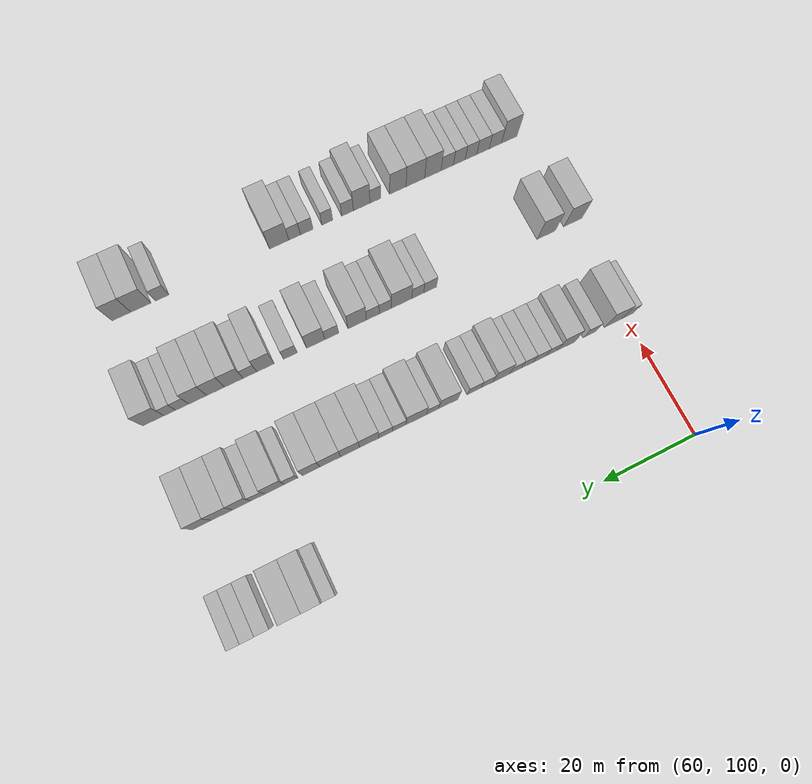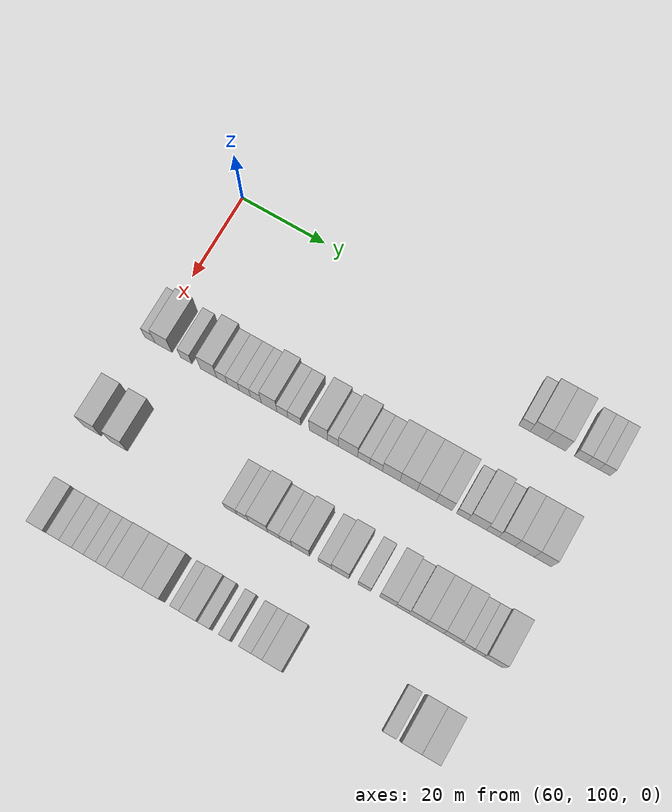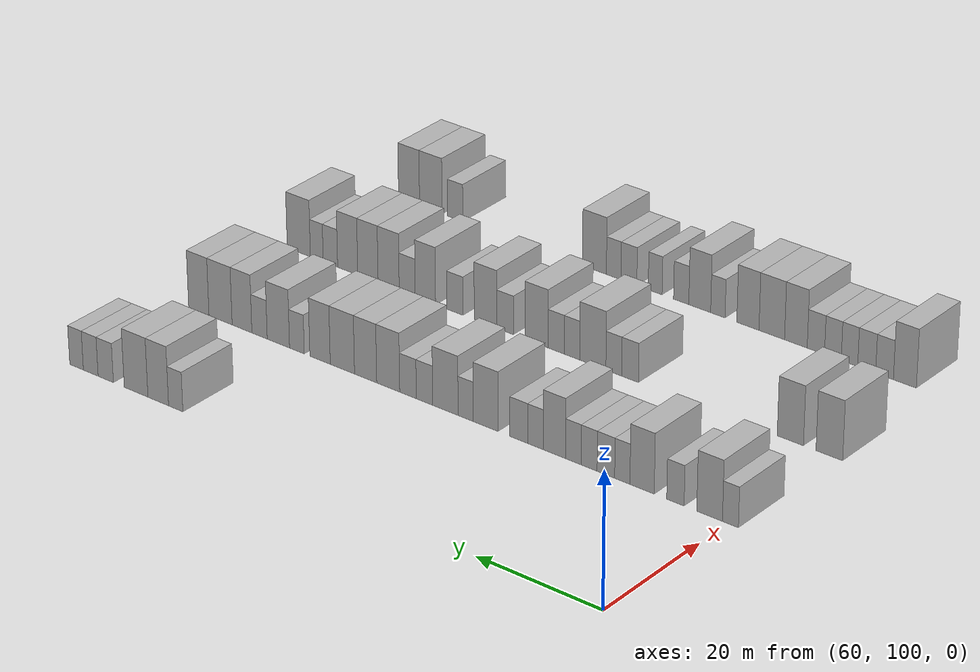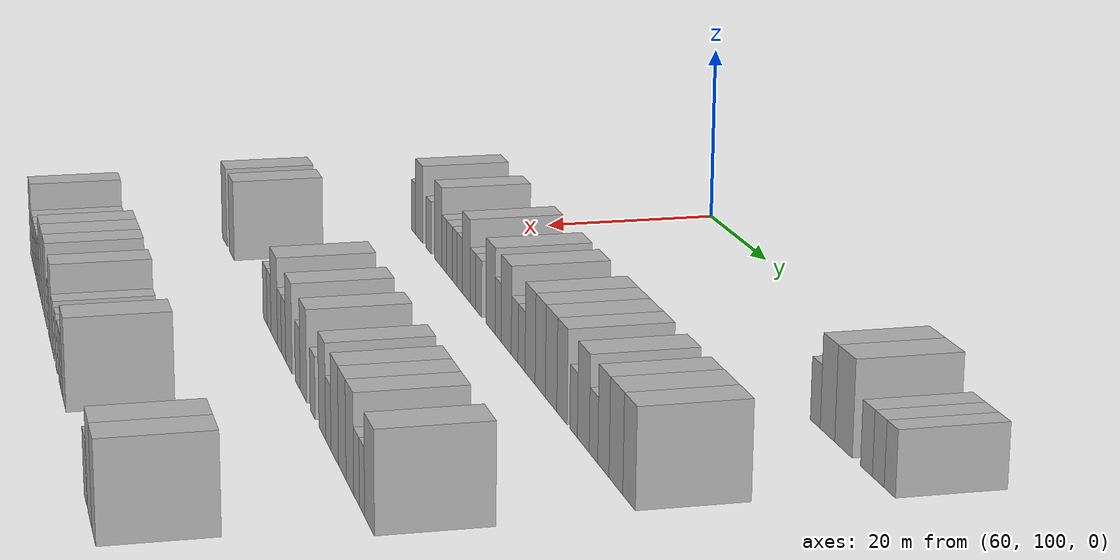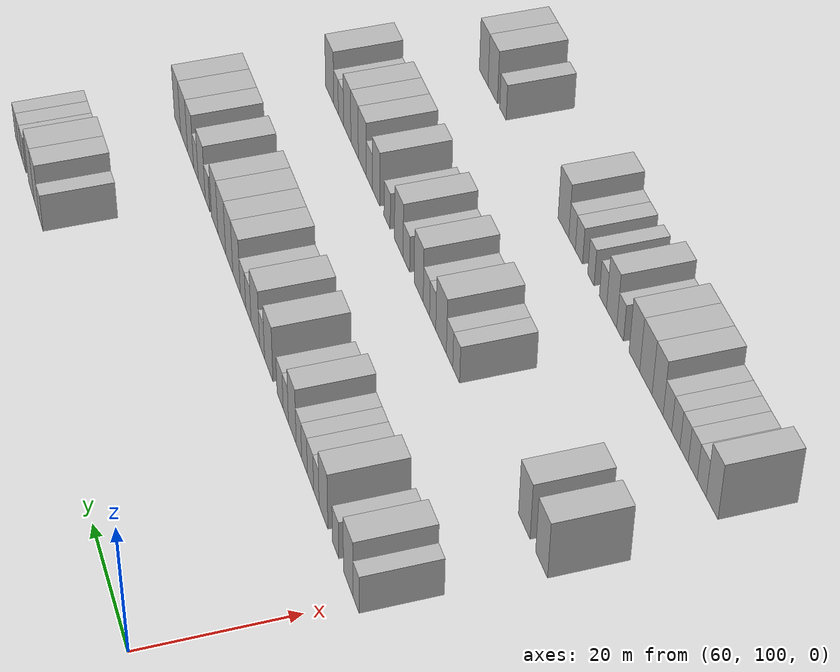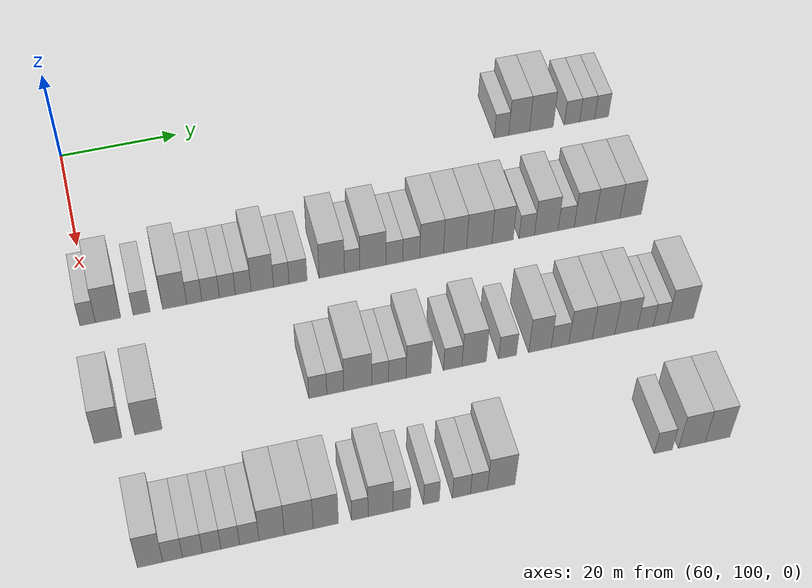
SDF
<sdf version="1.6">
 <world name="default">
  <model name="building_520">
   <static>1</static>
   <pose>69.0000 174.6282 0 0.000000 0.000000 0.000000</pose>
   <link name="link">
    <pose>0 0 3.00 0 0 0</pose>
    <collision name="collision"><geometry><box><size>10.0000 2.5870 6.0000</size></box></geometry></collision>
    <visual name="visual">
     <cast_shadows>0</cast_shadows>
     <geometry><box><size>10.0000 2.5870 6.0000</size></box></geometry>
     <material>
      <script>
       <uri>model://HANNAS_wall/materials/scripts</uri>
       <uri>model://HANNAS_wall/materials/textures</uri>
       <name>vrc/HANNAS_wall</name>
      </script>
     </material>
    </visual>
   </link>
  </model>
  <model name="building_521">
   <static>1</static>
   <pose>69.0000 177.7960 0 0.000000 0.000000 0.000000</pose>
   <link name="link">
    <pose>0 0 4.50 0 0 0</pose>
    <collision name="collision"><geometry><box><size>10.0000 3.7487 9.0000</size></box></geometry></collision>
    <visual name="visual">
     <cast_shadows>0</cast_shadows>
     <geometry><box><size>10.0000 3.7487 9.0000</size></box></geometry>
     <material>
      <script>
       <uri>model://HANNAS_wall/materials/scripts</uri>
       <uri>model://HANNAS_wall/materials/textures</uri>
       <name>vrc/HANNAS_wall</name>
      </script>
     </material>
    </visual>
   </link>
  </model>
  <model name="building_522">
   <static>1</static>
   <pose>69.0000 181.8358 0 0.000000 0.000000 0.000000</pose>
   <link name="link">
    <pose>0 0 4.50 0 0 0</pose>
    <collision name="collision"><geometry><box><size>10.0000 4.3308 9.0000</size></box></geometry></collision>
    <visual name="visual">
     <cast_shadows>0</cast_shadows>
     <geometry><box><size>10.0000 4.3308 9.0000</size></box></geometry>
     <material>
      <script>
       <uri>model://HANNAS_wall/materials/scripts</uri>
       <uri>model://HANNAS_wall/materials/textures</uri>
       <name>vrc/HANNAS_wall</name>
      </script>
     </material>
    </visual>
   </link>
  </model>
  <model name="building_523">
   <static>1</static>
   <pose>69.0000 187.4161 0 0.000000 0.000000 0.000000</pose>
   <link name="link">
    <pose>0 0 3.00 0 0 0</pose>
    <collision name="collision"><geometry><box><size>10.0000 2.8300 6.0000</size></box></geometry></collision>
    <visual name="visual">
     <cast_shadows>0</cast_shadows>
     <geometry><box><size>10.0000 2.8300 6.0000</size></box></geometry>
     <material>
      <script>
       <uri>model://HANNAS_wall/materials/scripts</uri>
       <uri>model://HANNAS_wall/materials/textures</uri>
       <name>vrc/HANNAS_wall</name>
      </script>
     </material>
    </visual>
   </link>
  </model>
  <model name="building_524">
   <static>1</static>
   <pose>69.0000 190.2018 0 0.000000 0.000000 0.000000</pose>
   <link name="link">
    <pose>0 0 3.00 0 0 0</pose>
    <collision name="collision"><geometry><box><size>10.0000 2.7413 6.0000</size></box></geometry></collision>
    <visual name="visual">
     <cast_shadows>0</cast_shadows>
     <geometry><box><size>10.0000 2.7413 6.0000</size></box></geometry>
     <material>
      <script>
       <uri>model://HANNAS_wall/materials/scripts</uri>
       <uri>model://HANNAS_wall/materials/textures</uri>
       <name>vrc/HANNAS_wall</name>
      </script>
     </material>
    </visual>
   </link>
  </model>
  <model name="building_525">
   <static>1</static>
   <pose>69.0000 192.8396 0 0.000000 0.000000 0.000000</pose>
   <link name="link">
    <pose>0 0 3.00 0 0 0</pose>
    <collision name="collision"><geometry><box><size>10.0000 2.5343 6.0000</size></box></geometry></collision>
    <visual name="visual">
     <cast_shadows>0</cast_shadows>
     <geometry><box><size>10.0000 2.5343 6.0000</size></box></geometry>
     <material>
      <script>
       <uri>model://HANNAS_wall/materials/scripts</uri>
       <uri>model://HANNAS_wall/materials/textures</uri>
       <name>vrc/HANNAS_wall</name>
      </script>
     </material>
    </visual>
   </link>
  </model>
  <model name="building_698">
   <static>1</static>
   <pose>91.0000 99.5656 0 0.000000 0.000000 0.000000</pose>
   <link name="link">
    <pose>0 0 3.00 0 0 0</pose>
    <collision name="collision"><geometry><box><size>10.0000 2.5006 6.0000</size></box></geometry></collision>
    <visual name="visual">
     <cast_shadows>0</cast_shadows>
     <geometry><box><size>10.0000 2.5006 6.0000</size></box></geometry>
     <material>
      <script>
       <uri>model://HANNAS_wall/materials/scripts</uri>
       <uri>model://HANNAS_wall/materials/textures</uri>
       <name>vrc/HANNAS_wall</name>
      </script>
     </material>
    </visual>
   </link>
  </model>
  <model name="building_699">
   <static>1</static>
   <pose>91.0000 102.8325 0 0.000000 0.000000 0.000000</pose>
   <link name="link">
    <pose>0 0 4.50 0 0 0</pose>
    <collision name="collision"><geometry><box><size>10.0000 4.0331 9.0000</size></box></geometry></collision>
    <visual name="visual">
     <cast_shadows>0</cast_shadows>
     <geometry><box><size>10.0000 4.0331 9.0000</size></box></geometry>
     <material>
      <script>
       <uri>model://HANNAS_wall/materials/scripts</uri>
       <uri>model://HANNAS_wall/materials/textures</uri>
       <name>vrc/HANNAS_wall</name>
      </script>
     </material>
    </visual>
   </link>
  </model>
  <model name="building_700">
   <static>1</static>
   <pose>91.0000 108.2322 0 0.000000 0.000000 0.000000</pose>
   <link name="link">
    <pose>0 0 3.00 0 0 0</pose>
    <collision name="collision"><geometry><box><size>10.0000 2.7662 6.0000</size></box></geometry></collision>
    <visual name="visual">
     <cast_shadows>0</cast_shadows>
     <geometry><box><size>10.0000 2.7662 6.0000</size></box></geometry>
     <material>
      <script>
       <uri>model://HANNAS_wall/materials/scripts</uri>
       <uri>model://HANNAS_wall/materials/textures</uri>
       <name>vrc/HANNAS_wall</name>
      </script>
     </material>
    </visual>
   </link>
  </model>
  <model name="building_701">
   <static>1</static>
   <pose>91.0000 113.5698 0 0.000000 0.000000 0.000000</pose>
   <link name="link">
    <pose>0 0 4.50 0 0 0</pose>
    <collision name="collision"><geometry><box><size>10.0000 3.9090 9.0000</size></box></geometry></collision>
    <visual name="visual">
     <cast_shadows>0</cast_shadows>
     <geometry><box><size>10.0000 3.9090 9.0000</size></box></geometry>
     <material>
      <script>
       <uri>model://HANNAS_wall/materials/scripts</uri>
       <uri>model://HANNAS_wall/materials/textures</uri>
       <name>vrc/HANNAS_wall</name>
      </script>
     </material>
    </visual>
   </link>
  </model>
  <model name="building_702">
   <static>1</static>
   <pose>91.0000 116.7594 0 0.000000 0.000000 0.000000</pose>
   <link name="link">
    <pose>0 0 3.00 0 0 0</pose>
    <collision name="collision"><geometry><box><size>10.0000 2.4703 6.0000</size></box></geometry></collision>
    <visual name="visual">
     <cast_shadows>0</cast_shadows>
     <geometry><box><size>10.0000 2.4703 6.0000</size></box></geometry>
     <material>
      <script>
       <uri>model://HANNAS_wall/materials/scripts</uri>
       <uri>model://HANNAS_wall/materials/textures</uri>
       <name>vrc/HANNAS_wall</name>
      </script>
     </material>
    </visual>
   </link>
  </model>
  <model name="building_703">
   <static>1</static>
   <pose>91.0000 119.4203 0 0.000000 0.000000 0.000000</pose>
   <link name="link">
    <pose>0 0 3.00 0 0 0</pose>
    <collision name="collision"><geometry><box><size>10.0000 2.8514 6.0000</size></box></geometry></collision>
    <visual name="visual">
     <cast_shadows>0</cast_shadows>
     <geometry><box><size>10.0000 2.8514 6.0000</size></box></geometry>
     <material>
      <script>
       <uri>model://HANNAS_wall/materials/scripts</uri>
       <uri>model://HANNAS_wall/materials/textures</uri>
       <name>vrc/HANNAS_wall</name>
      </script>
     </material>
    </visual>
   </link>
  </model>
  <model name="building_704">
   <static>1</static>
   <pose>91.0000 122.1571 0 0.000000 0.000000 0.000000</pose>
   <link name="link">
    <pose>0 0 3.00 0 0 0</pose>
    <collision name="collision"><geometry><box><size>10.0000 2.6221 6.0000</size></box></geometry></collision>
    <visual name="visual">
     <cast_shadows>0</cast_shadows>
     <geometry><box><size>10.0000 2.6221 6.0000</size></box></geometry>
     <material>
      <script>
       <uri>model://HANNAS_wall/materials/scripts</uri>
       <uri>model://HANNAS_wall/materials/textures</uri>
       <name>vrc/HANNAS_wall</name>
      </script>
     </material>
    </visual>
   </link>
  </model>
  <model name="building_705">
   <static>1</static>
   <pose>91.0000 124.7547 0 0.000000 0.000000 0.000000</pose>
   <link name="link">
    <pose>0 0 3.00 0 0 0</pose>
    <collision name="collision"><geometry><box><size>10.0000 2.5730 6.0000</size></box></geometry></collision>
    <visual name="visual">
     <cast_shadows>0</cast_shadows>
     <geometry><box><size>10.0000 2.5730 6.0000</size></box></geometry>
     <material>
      <script>
       <uri>model://HANNAS_wall/materials/scripts</uri>
       <uri>model://HANNAS_wall/materials/textures</uri>
       <name>vrc/HANNAS_wall</name>
      </script>
     </material>
    </visual>
   </link>
  </model>
  <model name="building_706">
   <static>1</static>
   <pose>91.0000 127.8874 0 0.000000 0.000000 0.000000</pose>
   <link name="link">
    <pose>0 0 4.50 0 0 0</pose>
    <collision name="collision"><geometry><box><size>10.0000 3.6925 9.0000</size></box></geometry></collision>
    <visual name="visual">
     <cast_shadows>0</cast_shadows>
     <geometry><box><size>10.0000 3.6925 9.0000</size></box></geometry>
     <material>
      <script>
       <uri>model://HANNAS_wall/materials/scripts</uri>
       <uri>model://HANNAS_wall/materials/textures</uri>
       <name>vrc/HANNAS_wall</name>
      </script>
     </material>
    </visual>
   </link>
  </model>
  <model name="building_707">
   <static>1</static>
   <pose>91.0000 131.0198 0 0.000000 0.000000 0.000000</pose>
   <link name="link">
    <pose>0 0 3.00 0 0 0</pose>
    <collision name="collision"><geometry><box><size>10.0000 2.5723 6.0000</size></box></geometry></collision>
    <visual name="visual">
     <cast_shadows>0</cast_shadows>
     <geometry><box><size>10.0000 2.5723 6.0000</size></box></geometry>
     <material>
      <script>
       <uri>model://HANNAS_wall/materials/scripts</uri>
       <uri>model://HANNAS_wall/materials/textures</uri>
       <name>vrc/HANNAS_wall</name>
      </script>
     </material>
    </visual>
   </link>
  </model>
  <model name="building_708">
   <static>1</static>
   <pose>91.0000 133.7971 0 0.000000 0.000000 0.000000</pose>
   <link name="link">
    <pose>0 0 3.00 0 0 0</pose>
    <collision name="collision"><geometry><box><size>10.0000 2.9824 6.0000</size></box></geometry></collision>
    <visual name="visual">
     <cast_shadows>0</cast_shadows>
     <geometry><box><size>10.0000 2.9824 6.0000</size></box></geometry>
     <material>
      <script>
       <uri>model://HANNAS_wall/materials/scripts</uri>
       <uri>model://HANNAS_wall/materials/textures</uri>
       <name>vrc/HANNAS_wall</name>
      </script>
     </material>
    </visual>
   </link>
  </model>
  <model name="building_709">
   <static>1</static>
   <pose>91.0000 139.3948 0 0.000000 0.000000 0.000000</pose>
   <link name="link">
    <pose>0 0 4.50 0 0 0</pose>
    <collision name="collision"><geometry><box><size>10.0000 4.2129 9.0000</size></box></geometry></collision>
    <visual name="visual">
     <cast_shadows>0</cast_shadows>
     <geometry><box><size>10.0000 4.2129 9.0000</size></box></geometry>
     <material>
      <script>
       <uri>model://HANNAS_wall/materials/scripts</uri>
       <uri>model://HANNAS_wall/materials/textures</uri>
       <name>vrc/HANNAS_wall</name>
      </script>
     </material>
    </visual>
   </link>
  </model>
  <model name="building_710">
   <static>1</static>
   <pose>91.0000 142.7893 0 0.000000 0.000000 0.000000</pose>
   <link name="link">
    <pose>0 0 3.00 0 0 0</pose>
    <collision name="collision"><geometry><box><size>10.0000 2.5761 6.0000</size></box></geometry></collision>
    <visual name="visual">
     <cast_shadows>0</cast_shadows>
     <geometry><box><size>10.0000 2.5761 6.0000</size></box></geometry>
     <material>
      <script>
       <uri>model://HANNAS_wall/materials/scripts</uri>
       <uri>model://HANNAS_wall/materials/textures</uri>
       <name>vrc/HANNAS_wall</name>
      </script>
     </material>
    </visual>
   </link>
  </model>
  <model name="building_711">
   <static>1</static>
   <pose>91.0000 146.2632 0 0.000000 0.000000 0.000000</pose>
   <link name="link">
    <pose>0 0 4.50 0 0 0</pose>
    <collision name="collision"><geometry><box><size>10.0000 4.3718 9.0000</size></box></geometry></collision>
    <visual name="visual">
     <cast_shadows>0</cast_shadows>
     <geometry><box><size>10.0000 4.3718 9.0000</size></box></geometry>
     <material>
      <script>
       <uri>model://HANNAS_wall/materials/scripts</uri>
       <uri>model://HANNAS_wall/materials/textures</uri>
       <name>vrc/HANNAS_wall</name>
      </script>
     </material>
    </visual>
   </link>
  </model>
  <model name="building_712">
   <static>1</static>
   <pose>91.0000 149.8657 0 0.000000 0.000000 0.000000</pose>
   <link name="link">
    <pose>0 0 3.00 0 0 0</pose>
    <collision name="collision"><geometry><box><size>10.0000 2.8332 6.0000</size></box></geometry></collision>
    <visual name="visual">
     <cast_shadows>0</cast_shadows>
     <geometry><box><size>10.0000 2.8332 6.0000</size></box></geometry>
     <material>
      <script>
       <uri>model://HANNAS_wall/materials/scripts</uri>
       <uri>model://HANNAS_wall/materials/textures</uri>
       <name>vrc/HANNAS_wall</name>
      </script>
     </material>
    </visual>
   </link>
  </model>
  <model name="building_713">
   <static>1</static>
   <pose>91.0000 152.7267 0 0.000000 0.000000 0.000000</pose>
   <link name="link">
    <pose>0 0 3.00 0 0 0</pose>
    <collision name="collision"><geometry><box><size>10.0000 2.8889 6.0000</size></box></geometry></collision>
    <visual name="visual">
     <cast_shadows>0</cast_shadows>
     <geometry><box><size>10.0000 2.8889 6.0000</size></box></geometry>
     <material>
      <script>
       <uri>model://HANNAS_wall/materials/scripts</uri>
       <uri>model://HANNAS_wall/materials/textures</uri>
       <name>vrc/HANNAS_wall</name>
      </script>
     </material>
    </visual>
   </link>
  </model>
  <model name="building_714">
   <static>1</static>
   <pose>91.0000 156.1874 0 0.000000 0.000000 0.000000</pose>
   <link name="link">
    <pose>0 0 4.50 0 0 0</pose>
    <collision name="collision"><geometry><box><size>10.0000 4.0325 9.0000</size></box></geometry></collision>
    <visual name="visual">
     <cast_shadows>0</cast_shadows>
     <geometry><box><size>10.0000 4.0325 9.0000</size></box></geometry>
     <material>
      <script>
       <uri>model://HANNAS_wall/materials/scripts</uri>
       <uri>model://HANNAS_wall/materials/textures</uri>
       <name>vrc/HANNAS_wall</name>
      </script>
     </material>
    </visual>
   </link>
  </model>
  <model name="building_715">
   <static>1</static>
   <pose>91.0000 160.1653 0 0.000000 0.000000 0.000000</pose>
   <link name="link">
    <pose>0 0 4.50 0 0 0</pose>
    <collision name="collision"><geometry><box><size>10.0000 3.9233 9.0000</size></box></geometry></collision>
    <visual name="visual">
     <cast_shadows>0</cast_shadows>
     <geometry><box><size>10.0000 3.9233 9.0000</size></box></geometry>
     <material>
      <script>
       <uri>model://HANNAS_wall/materials/scripts</uri>
       <uri>model://HANNAS_wall/materials/textures</uri>
       <name>vrc/HANNAS_wall</name>
      </script>
     </material>
    </visual>
   </link>
  </model>
  <model name="building_716">
   <static>1</static>
   <pose>91.0000 164.2886 0 0.000000 0.000000 0.000000</pose>
   <link name="link">
    <pose>0 0 4.50 0 0 0</pose>
    <collision name="collision"><geometry><box><size>10.0000 4.3233 9.0000</size></box></geometry></collision>
    <visual name="visual">
     <cast_shadows>0</cast_shadows>
     <geometry><box><size>10.0000 4.3233 9.0000</size></box></geometry>
     <material>
      <script>
       <uri>model://HANNAS_wall/materials/scripts</uri>
       <uri>model://HANNAS_wall/materials/textures</uri>
       <name>vrc/HANNAS_wall</name>
      </script>
     </material>
    </visual>
   </link>
  </model>
  <model name="building_717">
   <static>1</static>
   <pose>91.0000 168.2828 0 0.000000 0.000000 0.000000</pose>
   <link name="link">
    <pose>0 0 4.50 0 0 0</pose>
    <collision name="collision"><geometry><box><size>10.0000 3.6650 9.0000</size></box></geometry></collision>
    <visual name="visual">
     <cast_shadows>0</cast_shadows>
     <geometry><box><size>10.0000 3.6650 9.0000</size></box></geometry>
     <material>
      <script>
       <uri>model://HANNAS_wall/materials/scripts</uri>
       <uri>model://HANNAS_wall/materials/textures</uri>
       <name>vrc/HANNAS_wall</name>
      </script>
     </material>
    </visual>
   </link>
  </model>
  <model name="building_718">
   <static>1</static>
   <pose>91.0000 172.4530 0 0.000000 0.000000 0.000000</pose>
   <link name="link">
    <pose>0 0 3.00 0 0 0</pose>
    <collision name="collision"><geometry><box><size>10.0000 2.6755 6.0000</size></box></geometry></collision>
    <visual name="visual">
     <cast_shadows>0</cast_shadows>
     <geometry><box><size>10.0000 2.6755 6.0000</size></box></geometry>
     <material>
      <script>
       <uri>model://HANNAS_wall/materials/scripts</uri>
       <uri>model://HANNAS_wall/materials/textures</uri>
       <name>vrc/HANNAS_wall</name>
      </script>
     </material>
    </visual>
   </link>
  </model>
  <model name="building_719">
   <static>1</static>
   <pose>91.0000 175.8249 0 0.000000 0.000000 0.000000</pose>
   <link name="link">
    <pose>0 0 4.50 0 0 0</pose>
    <collision name="collision"><geometry><box><size>10.0000 4.0683 9.0000</size></box></geometry></collision>
    <visual name="visual">
     <cast_shadows>0</cast_shadows>
     <geometry><box><size>10.0000 4.0683 9.0000</size></box></geometry>
     <material>
      <script>
       <uri>model://HANNAS_wall/materials/scripts</uri>
       <uri>model://HANNAS_wall/materials/textures</uri>
       <name>vrc/HANNAS_wall</name>
      </script>
     </material>
    </visual>
   </link>
  </model>
  <model name="building_720">
   <static>1</static>
   <pose>91.0000 179.2675 0 0.000000 0.000000 0.000000</pose>
   <link name="link">
    <pose>0 0 3.00 0 0 0</pose>
    <collision name="collision"><geometry><box><size>10.0000 2.8168 6.0000</size></box></geometry></collision>
    <visual name="visual">
     <cast_shadows>0</cast_shadows>
     <geometry><box><size>10.0000 2.8168 6.0000</size></box></geometry>
     <material>
      <script>
       <uri>model://HANNAS_wall/materials/scripts</uri>
       <uri>model://HANNAS_wall/materials/textures</uri>
       <name>vrc/HANNAS_wall</name>
      </script>
     </material>
    </visual>
   </link>
  </model>
  <model name="building_721">
   <static>1</static>
   <pose>91.0000 182.4978 0 0.000000 0.000000 0.000000</pose>
   <link name="link">
    <pose>0 0 4.50 0 0 0</pose>
    <collision name="collision"><geometry><box><size>10.0000 3.6439 9.0000</size></box></geometry></collision>
    <visual name="visual">
     <cast_shadows>0</cast_shadows>
     <geometry><box><size>10.0000 3.6439 9.0000</size></box></geometry>
     <material>
      <script>
       <uri>model://HANNAS_wall/materials/scripts</uri>
       <uri>model://HANNAS_wall/materials/textures</uri>
       <name>vrc/HANNAS_wall</name>
      </script>
     </material>
    </visual>
   </link>
  </model>
  <model name="building_722">
   <static>1</static>
   <pose>91.0000 186.4746 0 0.000000 0.000000 0.000000</pose>
   <link name="link">
    <pose>0 0 4.50 0 0 0</pose>
    <collision name="collision"><geometry><box><size>10.0000 4.3098 9.0000</size></box></geometry></collision>
    <visual name="visual">
     <cast_shadows>0</cast_shadows>
     <geometry><box><size>10.0000 4.3098 9.0000</size></box></geometry>
     <material>
      <script>
       <uri>model://HANNAS_wall/materials/scripts</uri>
       <uri>model://HANNAS_wall/materials/textures</uri>
       <name>vrc/HANNAS_wall</name>
      </script>
     </material>
    </visual>
   </link>
  </model>
  <model name="building_723">
   <static>1</static>
   <pose>91.0000 190.5279 0 0.000000 0.000000 0.000000</pose>
   <link name="link">
    <pose>0 0 4.50 0 0 0</pose>
    <collision name="collision"><geometry><box><size>10.0000 3.7968 9.0000</size></box></geometry></collision>
    <visual name="visual">
     <cast_shadows>0</cast_shadows>
     <geometry><box><size>10.0000 3.7968 9.0000</size></box></geometry>
     <material>
      <script>
       <uri>model://HANNAS_wall/materials/scripts</uri>
       <uri>model://HANNAS_wall/materials/textures</uri>
       <name>vrc/HANNAS_wall</name>
      </script>
     </material>
    </visual>
   </link>
  </model>
  <model name="building_886">
   <static>1</static>
   <pose>113.0000 99.5436 0 0.000000 0.000000 0.000000</pose>
   <link name="link">
    <pose>0 0 4.50 0 0 0</pose>
    <collision name="collision"><geometry><box><size>10.0000 4.2140 9.0000</size></box></geometry></collision>
    <visual name="visual">
     <cast_shadows>0</cast_shadows>
     <geometry><box><size>10.0000 4.2140 9.0000</size></box></geometry>
     <material>
      <script>
       <uri>model://HANNAS_wall/materials/scripts</uri>
       <uri>model://HANNAS_wall/materials/textures</uri>
       <name>vrc/HANNAS_wall</name>
      </script>
     </material>
    </visual>
   </link>
  </model>
  <model name="building_887">
   <static>1</static>
   <pose>113.0000 105.7502 0 0.000000 0.000000 0.000000</pose>
   <link name="link">
    <pose>0 0 4.50 0 0 0</pose>
    <collision name="collision"><geometry><box><size>10.0000 4.1991 9.0000</size></box></geometry></collision>
    <visual name="visual">
     <cast_shadows>0</cast_shadows>
     <geometry><box><size>10.0000 4.1991 9.0000</size></box></geometry>
     <material>
      <script>
       <uri>model://HANNAS_wall/materials/scripts</uri>
       <uri>model://HANNAS_wall/materials/textures</uri>
       <name>vrc/HANNAS_wall</name>
      </script>
     </material>
    </visual>
   </link>
  </model>
  <model name="building_888">
   <static>1</static>
   <pose>113.0000 132.1061 0 0.000000 0.000000 0.000000</pose>
   <link name="link">
    <pose>0 0 3.00 0 0 0</pose>
    <collision name="collision"><geometry><box><size>10.0000 2.8375 6.0000</size></box></geometry></collision>
    <visual name="visual">
     <cast_shadows>0</cast_shadows>
     <geometry><box><size>10.0000 2.8375 6.0000</size></box></geometry>
     <material>
      <script>
       <uri>model://HANNAS_wall/materials/scripts</uri>
       <uri>model://HANNAS_wall/materials/textures</uri>
       <name>vrc/HANNAS_wall</name>
      </script>
     </material>
    </visual>
   </link>
  </model>
  <model name="building_889">
   <static>1</static>
   <pose>113.0000 134.8638 0 0.000000 0.000000 0.000000</pose>
   <link name="link">
    <pose>0 0 3.00 0 0 0</pose>
    <collision name="collision"><geometry><box><size>10.0000 2.6779 6.0000</size></box></geometry></collision>
    <visual name="visual">
     <cast_shadows>0</cast_shadows>
     <geometry><box><size>10.0000 2.6779 6.0000</size></box></geometry>
     <material>
      <script>
       <uri>model://HANNAS_wall/materials/scripts</uri>
       <uri>model://HANNAS_wall/materials/textures</uri>
       <name>vrc/HANNAS_wall</name>
      </script>
     </material>
    </visual>
   </link>
  </model>
  <model name="building_890">
   <static>1</static>
   <pose>113.0000 138.4421 0 0.000000 0.000000 0.000000</pose>
   <link name="link">
    <pose>0 0 4.50 0 0 0</pose>
    <collision name="collision"><geometry><box><size>10.0000 4.4789 9.0000</size></box></geometry></collision>
    <visual name="visual">
     <cast_shadows>0</cast_shadows>
     <geometry><box><size>10.0000 4.4789 9.0000</size></box></geometry>
     <material>
      <script>
       <uri>model://HANNAS_wall/materials/scripts</uri>
       <uri>model://HANNAS_wall/materials/textures</uri>
       <name>vrc/HANNAS_wall</name>
      </script>
     </material>
    </visual>
   </link>
  </model>
  <model name="building_891">
   <static>1</static>
   <pose>113.0000 142.0110 0 0.000000 0.000000 0.000000</pose>
   <link name="link">
    <pose>0 0 3.00 0 0 0</pose>
    <collision name="collision"><geometry><box><size>10.0000 2.6589 6.0000</size></box></geometry></collision>
    <visual name="visual">
     <cast_shadows>0</cast_shadows>
     <geometry><box><size>10.0000 2.6589 6.0000</size></box></geometry>
     <material>
      <script>
       <uri>model://HANNAS_wall/materials/scripts</uri>
       <uri>model://HANNAS_wall/materials/textures</uri>
       <name>vrc/HANNAS_wall</name>
      </script>
     </material>
    </visual>
   </link>
  </model>
  <model name="building_892">
   <static>1</static>
   <pose>113.0000 144.7371 0 0.000000 0.000000 0.000000</pose>
   <link name="link">
    <pose>0 0 3.00 0 0 0</pose>
    <collision name="collision"><geometry><box><size>10.0000 2.7932 6.0000</size></box></geometry></collision>
    <visual name="visual">
     <cast_shadows>0</cast_shadows>
     <geometry><box><size>10.0000 2.7932 6.0000</size></box></geometry>
     <material>
      <script>
       <uri>model://HANNAS_wall/materials/scripts</uri>
       <uri>model://HANNAS_wall/materials/textures</uri>
       <name>vrc/HANNAS_wall</name>
      </script>
     </material>
    </visual>
   </link>
  </model>
  <model name="building_893">
   <static>1</static>
   <pose>113.0000 148.1540 0 0.000000 0.000000 0.000000</pose>
   <link name="link">
    <pose>0 0 4.50 0 0 0</pose>
    <collision name="collision"><geometry><box><size>10.0000 4.0405 9.0000</size></box></geometry></collision>
    <visual name="visual">
     <cast_shadows>0</cast_shadows>
     <geometry><box><size>10.0000 4.0405 9.0000</size></box></geometry>
     <material>
      <script>
       <uri>model://HANNAS_wall/materials/scripts</uri>
       <uri>model://HANNAS_wall/materials/textures</uri>
       <name>vrc/HANNAS_wall</name>
      </script>
     </material>
    </visual>
   </link>
  </model>
  <model name="building_894">
   <static>1</static>
   <pose>113.0000 153.6663 0 0.000000 0.000000 0.000000</pose>
   <link name="link">
    <pose>0 0 3.00 0 0 0</pose>
    <collision name="collision"><geometry><box><size>10.0000 2.9842 6.0000</size></box></geometry></collision>
    <visual name="visual">
     <cast_shadows>0</cast_shadows>
     <geometry><box><size>10.0000 2.9842 6.0000</size></box></geometry>
     <material>
      <script>
       <uri>model://HANNAS_wall/materials/scripts</uri>
       <uri>model://HANNAS_wall/materials/textures</uri>
       <name>vrc/HANNAS_wall</name>
      </script>
     </material>
    </visual>
   </link>
  </model>
  <model name="building_895">
   <static>1</static>
   <pose>113.0000 157.1352 0 0.000000 0.000000 0.000000</pose>
   <link name="link">
    <pose>0 0 4.50 0 0 0</pose>
    <collision name="collision"><geometry><box><size>10.0000 3.9537 9.0000</size></box></geometry></collision>
    <visual name="visual">
     <cast_shadows>0</cast_shadows>
     <geometry><box><size>10.0000 3.9537 9.0000</size></box></geometry>
     <material>
      <script>
       <uri>model://HANNAS_wall/materials/scripts</uri>
       <uri>model://HANNAS_wall/materials/textures</uri>
       <name>vrc/HANNAS_wall</name>
      </script>
     </material>
    </visual>
   </link>
  </model>
  <model name="building_896">
   <static>1</static>
   <pose>113.0000 162.5770 0 0.000000 0.000000 0.000000</pose>
   <link name="link">
    <pose>0 0 3.00 0 0 0</pose>
    <collision name="collision"><geometry><box><size>10.0000 2.9298 6.0000</size></box></geometry></collision>
    <visual name="visual">
     <cast_shadows>0</cast_shadows>
     <geometry><box><size>10.0000 2.9298 6.0000</size></box></geometry>
     <material>
      <script>
       <uri>model://HANNAS_wall/materials/scripts</uri>
       <uri>model://HANNAS_wall/materials/textures</uri>
       <name>vrc/HANNAS_wall</name>
      </script>
     </material>
    </visual>
   </link>
  </model>
  <model name="building_897">
   <static>1</static>
   <pose>113.0000 167.8822 0 0.000000 0.000000 0.000000</pose>
   <link name="link">
    <pose>0 0 4.50 0 0 0</pose>
    <collision name="collision"><geometry><box><size>10.0000 3.6807 9.0000</size></box></geometry></collision>
    <visual name="visual">
     <cast_shadows>0</cast_shadows>
     <geometry><box><size>10.0000 3.6807 9.0000</size></box></geometry>
     <material>
      <script>
       <uri>model://HANNAS_wall/materials/scripts</uri>
       <uri>model://HANNAS_wall/materials/textures</uri>
       <name>vrc/HANNAS_wall</name>
      </script>
     </material>
    </visual>
   </link>
  </model>
  <model name="building_898">
   <static>1</static>
   <pose>113.0000 171.1848 0 0.000000 0.000000 0.000000</pose>
   <link name="link">
    <pose>0 0 3.00 0 0 0</pose>
    <collision name="collision"><geometry><box><size>10.0000 2.9245 6.0000</size></box></geometry></collision>
    <visual name="visual">
     <cast_shadows>0</cast_shadows>
     <geometry><box><size>10.0000 2.9245 6.0000</size></box></geometry>
     <material>
      <script>
       <uri>model://HANNAS_wall/materials/scripts</uri>
       <uri>model://HANNAS_wall/materials/textures</uri>
       <name>vrc/HANNAS_wall</name>
      </script>
     </material>
    </visual>
   </link>
  </model>
  <model name="building_899">
   <static>1</static>
   <pose>113.0000 174.5812 0 0.000000 0.000000 0.000000</pose>
   <link name="link">
    <pose>0 0 4.50 0 0 0</pose>
    <collision name="collision"><geometry><box><size>10.0000 3.8681 9.0000</size></box></geometry></collision>
    <visual name="visual">
     <cast_shadows>0</cast_shadows>
     <geometry><box><size>10.0000 3.8681 9.0000</size></box></geometry>
     <material>
      <script>
       <uri>model://HANNAS_wall/materials/scripts</uri>
       <uri>model://HANNAS_wall/materials/textures</uri>
       <name>vrc/HANNAS_wall</name>
      </script>
     </material>
    </visual>
   </link>
  </model>
  <model name="building_900">
   <static>1</static>
   <pose>113.0000 178.3941 0 0.000000 0.000000 0.000000</pose>
   <link name="link">
    <pose>0 0 4.50 0 0 0</pose>
    <collision name="collision"><geometry><box><size>10.0000 3.7578 9.0000</size></box></geometry></collision>
    <visual name="visual">
     <cast_shadows>0</cast_shadows>
     <geometry><box><size>10.0000 3.7578 9.0000</size></box></geometry>
     <material>
      <script>
       <uri>model://HANNAS_wall/materials/scripts</uri>
       <uri>model://HANNAS_wall/materials/textures</uri>
       <name>vrc/HANNAS_wall</name>
      </script>
     </material>
    </visual>
   </link>
  </model>
  <model name="building_901">
   <static>1</static>
   <pose>113.0000 182.1465 0 0.000000 0.000000 0.000000</pose>
   <link name="link">
    <pose>0 0 4.50 0 0 0</pose>
    <collision name="collision"><geometry><box><size>10.0000 3.7469 9.0000</size></box></geometry></collision>
    <visual name="visual">
     <cast_shadows>0</cast_shadows>
     <geometry><box><size>10.0000 3.7469 9.0000</size></box></geometry>
     <material>
      <script>
       <uri>model://HANNAS_wall/materials/scripts</uri>
       <uri>model://HANNAS_wall/materials/textures</uri>
       <name>vrc/HANNAS_wall</name>
      </script>
     </material>
    </visual>
   </link>
  </model>
  <model name="building_902">
   <static>1</static>
   <pose>113.0000 185.3722 0 0.000000 0.000000 0.000000</pose>
   <link name="link">
    <pose>0 0 3.00 0 0 0</pose>
    <collision name="collision"><geometry><box><size>10.0000 2.7045 6.0000</size></box></geometry></collision>
    <visual name="visual">
     <cast_shadows>0</cast_shadows>
     <geometry><box><size>10.0000 2.7045 6.0000</size></box></geometry>
     <material>
      <script>
       <uri>model://HANNAS_wall/materials/scripts</uri>
       <uri>model://HANNAS_wall/materials/textures</uri>
       <name>vrc/HANNAS_wall</name>
      </script>
     </material>
    </visual>
   </link>
  </model>
  <model name="building_903">
   <static>1</static>
   <pose>113.0000 187.9306 0 0.000000 0.000000 0.000000</pose>
   <link name="link">
    <pose>0 0 3.00 0 0 0</pose>
    <collision name="collision"><geometry><box><size>10.0000 2.4123 6.0000</size></box></geometry></collision>
    <visual name="visual">
     <cast_shadows>0</cast_shadows>
     <geometry><box><size>10.0000 2.4123 6.0000</size></box></geometry>
     <material>
      <script>
       <uri>model://HANNAS_wall/materials/scripts</uri>
       <uri>model://HANNAS_wall/materials/textures</uri>
       <name>vrc/HANNAS_wall</name>
      </script>
     </material>
    </visual>
   </link>
  </model>
  <model name="building_904">
   <static>1</static>
   <pose>113.0000 191.3226 0 0.000000 0.000000 0.000000</pose>
   <link name="link">
    <pose>0 0 4.50 0 0 0</pose>
    <collision name="collision"><geometry><box><size>10.0000 4.3717 9.0000</size></box></geometry></collision>
    <visual name="visual">
     <cast_shadows>0</cast_shadows>
     <geometry><box><size>10.0000 4.3717 9.0000</size></box></geometry>
     <material>
      <script>
       <uri>model://HANNAS_wall/materials/scripts</uri>
       <uri>model://HANNAS_wall/materials/textures</uri>
       <name>vrc/HANNAS_wall</name>
      </script>
     </material>
    </visual>
   </link>
  </model>
  <model name="building_1061">
   <static>1</static>
   <pose>135.0000 102.3981 0 0.000000 0.000000 0.000000</pose>
   <link name="link">
    <pose>0 0 4.50 0 0 0</pose>
    <collision name="collision"><geometry><box><size>10.0000 3.7000 9.0000</size></box></geometry></collision>
    <visual name="visual">
     <cast_shadows>0</cast_shadows>
     <geometry><box><size>10.0000 3.7000 9.0000</size></box></geometry>
     <material>
      <script>
       <uri>model://HANNAS_wall/materials/scripts</uri>
       <uri>model://HANNAS_wall/materials/textures</uri>
       <name>vrc/HANNAS_wall</name>
      </script>
     </material>
    </visual>
   </link>
  </model>
  <model name="building_1062">
   <static>1</static>
   <pose>135.0000 105.6875 0 0.000000 0.000000 0.000000</pose>
   <link name="link">
    <pose>0 0 3.00 0 0 0</pose>
    <collision name="collision"><geometry><box><size>10.0000 2.8786 6.0000</size></box></geometry></collision>
    <visual name="visual">
     <cast_shadows>0</cast_shadows>
     <geometry><box><size>10.0000 2.8786 6.0000</size></box></geometry>
     <material>
      <script>
       <uri>model://HANNAS_wall/materials/scripts</uri>
       <uri>model://HANNAS_wall/materials/textures</uri>
       <name>vrc/HANNAS_wall</name>
      </script>
     </material>
    </visual>
   </link>
  </model>
  <model name="building_1063">
   <static>1</static>
   <pose>135.0000 108.5880 0 0.000000 0.000000 0.000000</pose>
   <link name="link">
    <pose>0 0 3.00 0 0 0</pose>
    <collision name="collision"><geometry><box><size>10.0000 2.9226 6.0000</size></box></geometry></collision>
    <visual name="visual">
     <cast_shadows>0</cast_shadows>
     <geometry><box><size>10.0000 2.9226 6.0000</size></box></geometry>
     <material>
      <script>
       <uri>model://HANNAS_wall/materials/scripts</uri>
       <uri>model://HANNAS_wall/materials/textures</uri>
       <name>vrc/HANNAS_wall</name>
      </script>
     </material>
    </visual>
   </link>
  </model>
  <model name="building_1064">
   <static>1</static>
   <pose>135.0000 111.4020 0 0.000000 0.000000 0.000000</pose>
   <link name="link">
    <pose>0 0 3.00 0 0 0</pose>
    <collision name="collision"><geometry><box><size>10.0000 2.7054 6.0000</size></box></geometry></collision>
    <visual name="visual">
     <cast_shadows>0</cast_shadows>
     <geometry><box><size>10.0000 2.7054 6.0000</size></box></geometry>
     <material>
      <script>
       <uri>model://HANNAS_wall/materials/scripts</uri>
       <uri>model://HANNAS_wall/materials/textures</uri>
       <name>vrc/HANNAS_wall</name>
      </script>
     </material>
    </visual>
   </link>
  </model>
  <model name="building_1065">
   <static>1</static>
   <pose>135.0000 114.1296 0 0.000000 0.000000 0.000000</pose>
   <link name="link">
    <pose>0 0 3.00 0 0 0</pose>
    <collision name="collision"><geometry><box><size>10.0000 2.7498 6.0000</size></box></geometry></collision>
    <visual name="visual">
     <cast_shadows>0</cast_shadows>
     <geometry><box><size>10.0000 2.7498 6.0000</size></box></geometry>
     <material>
      <script>
       <uri>model://HANNAS_wall/materials/scripts</uri>
       <uri>model://HANNAS_wall/materials/textures</uri>
       <name>vrc/HANNAS_wall</name>
      </script>
     </material>
    </visual>
   </link>
  </model>
  <model name="building_1066">
   <static>1</static>
   <pose>135.0000 116.9414 0 0.000000 0.000000 0.000000</pose>
   <link name="link">
    <pose>0 0 3.00 0 0 0</pose>
    <collision name="collision"><geometry><box><size>10.0000 2.8738 6.0000</size></box></geometry></collision>
    <visual name="visual">
     <cast_shadows>0</cast_shadows>
     <geometry><box><size>10.0000 2.8738 6.0000</size></box></geometry>
     <material>
      <script>
       <uri>model://HANNAS_wall/materials/scripts</uri>
       <uri>model://HANNAS_wall/materials/textures</uri>
       <name>vrc/HANNAS_wall</name>
      </script>
     </material>
    </visual>
   </link>
  </model>
  <model name="building_1067">
   <static>1</static>
   <pose>135.0000 120.2716 0 0.000000 0.000000 0.000000</pose>
   <link name="link">
    <pose>0 0 4.50 0 0 0</pose>
    <collision name="collision"><geometry><box><size>10.0000 3.7865 9.0000</size></box></geometry></collision>
    <visual name="visual">
     <cast_shadows>0</cast_shadows>
     <geometry><box><size>10.0000 3.7865 9.0000</size></box></geometry>
     <material>
      <script>
       <uri>model://HANNAS_wall/materials/scripts</uri>
       <uri>model://HANNAS_wall/materials/textures</uri>
       <name>vrc/HANNAS_wall</name>
      </script>
     </material>
    </visual>
   </link>
  </model>
  <model name="building_1068">
   <static>1</static>
   <pose>135.0000 124.3132 0 0.000000 0.000000 0.000000</pose>
   <link name="link">
    <pose>0 0 4.50 0 0 0</pose>
    <collision name="collision"><geometry><box><size>10.0000 4.2968 9.0000</size></box></geometry></collision>
    <visual name="visual">
     <cast_shadows>0</cast_shadows>
     <geometry><box><size>10.0000 4.2968 9.0000</size></box></geometry>
     <material>
      <script>
       <uri>model://HANNAS_wall/materials/scripts</uri>
       <uri>model://HANNAS_wall/materials/textures</uri>
       <name>vrc/HANNAS_wall</name>
      </script>
     </material>
    </visual>
   </link>
  </model>
  <model name="building_1069">
   <static>1</static>
   <pose>135.0000 128.3406 0 0.000000 0.000000 0.000000</pose>
   <link name="link">
    <pose>0 0 4.50 0 0 0</pose>
    <collision name="collision"><geometry><box><size>10.0000 3.7579 9.0000</size></box></geometry></collision>
    <visual name="visual">
     <cast_shadows>0</cast_shadows>
     <geometry><box><size>10.0000 3.7579 9.0000</size></box></geometry>
     <material>
      <script>
       <uri>model://HANNAS_wall/materials/scripts</uri>
       <uri>model://HANNAS_wall/materials/textures</uri>
       <name>vrc/HANNAS_wall</name>
      </script>
     </material>
    </visual>
   </link>
  </model>
  <model name="building_1070">
   <static>1</static>
   <pose>135.0000 133.4540 0 0.000000 0.000000 0.000000</pose>
   <link name="link">
    <pose>0 0 3.00 0 0 0</pose>
    <collision name="collision"><geometry><box><size>10.0000 2.4688 6.0000</size></box></geometry></collision>
    <visual name="visual">
     <cast_shadows>0</cast_shadows>
     <geometry><box><size>10.0000 2.4688 6.0000</size></box></geometry>
     <material>
      <script>
       <uri>model://HANNAS_wall/materials/scripts</uri>
       <uri>model://HANNAS_wall/materials/textures</uri>
       <name>vrc/HANNAS_wall</name>
      </script>
     </material>
    </visual>
   </link>
  </model>
  <model name="building_1071">
   <static>1</static>
   <pose>135.0000 136.5691 0 0.000000 0.000000 0.000000</pose>
   <link name="link">
    <pose>0 0 4.50 0 0 0</pose>
    <collision name="collision"><geometry><box><size>10.0000 3.7615 9.0000</size></box></geometry></collision>
    <visual name="visual">
     <cast_shadows>0</cast_shadows>
     <geometry><box><size>10.0000 3.7615 9.0000</size></box></geometry>
     <material>
      <script>
       <uri>model://HANNAS_wall/materials/scripts</uri>
       <uri>model://HANNAS_wall/materials/textures</uri>
       <name>vrc/HANNAS_wall</name>
      </script>
     </material>
    </visual>
   </link>
  </model>
  <model name="building_1072">
   <static>1</static>
   <pose>135.0000 139.7699 0 0.000000 0.000000 0.000000</pose>
   <link name="link">
    <pose>0 0 3.00 0 0 0</pose>
    <collision name="collision"><geometry><box><size>10.0000 2.6402 6.0000</size></box></geometry></collision>
    <visual name="visual">
     <cast_shadows>0</cast_shadows>
     <geometry><box><size>10.0000 2.6402 6.0000</size></box></geometry>
     <material>
      <script>
       <uri>model://HANNAS_wall/materials/scripts</uri>
       <uri>model://HANNAS_wall/materials/textures</uri>
       <name>vrc/HANNAS_wall</name>
      </script>
     </material>
    </visual>
   </link>
  </model>
  <model name="building_1073">
   <static>1</static>
   <pose>135.0000 144.3009 0 0.000000 0.000000 0.000000</pose>
   <link name="link">
    <pose>0 0 3.00 0 0 0</pose>
    <collision name="collision"><geometry><box><size>10.0000 2.4218 6.0000</size></box></geometry></collision>
    <visual name="visual">
     <cast_shadows>0</cast_shadows>
     <geometry><box><size>10.0000 2.4218 6.0000</size></box></geometry>
     <material>
      <script>
       <uri>model://HANNAS_wall/materials/scripts</uri>
       <uri>model://HANNAS_wall/materials/textures</uri>
       <name>vrc/HANNAS_wall</name>
      </script>
     </material>
    </visual>
   </link>
  </model>
  <model name="building_1074">
   <static>1</static>
   <pose>135.0000 148.9067 0 0.000000 0.000000 0.000000</pose>
   <link name="link">
    <pose>0 0 3.00 0 0 0</pose>
    <collision name="collision"><geometry><box><size>10.0000 2.7900 6.0000</size></box></geometry></collision>
    <visual name="visual">
     <cast_shadows>0</cast_shadows>
     <geometry><box><size>10.0000 2.7900 6.0000</size></box></geometry>
     <material>
      <script>
       <uri>model://HANNAS_wall/materials/scripts</uri>
       <uri>model://HANNAS_wall/materials/textures</uri>
       <name>vrc/HANNAS_wall</name>
      </script>
     </material>
    </visual>
   </link>
  </model>
  <model name="building_1075">
   <static>1</static>
   <pose>135.0000 151.5991 0 0.000000 0.000000 0.000000</pose>
   <link name="link">
    <pose>0 0 3.00 0 0 0</pose>
    <collision name="collision"><geometry><box><size>10.0000 2.5947 6.0000</size></box></geometry></collision>
    <visual name="visual">
     <cast_shadows>0</cast_shadows>
     <geometry><box><size>10.0000 2.5947 6.0000</size></box></geometry>
     <material>
      <script>
       <uri>model://HANNAS_wall/materials/scripts</uri>
       <uri>model://HANNAS_wall/materials/textures</uri>
       <name>vrc/HANNAS_wall</name>
      </script>
     </material>
    </visual>
   </link>
  </model>
  <model name="building_1076">
   <static>1</static>
   <pose>135.0000 155.0267 0 0.000000 0.000000 0.000000</pose>
   <link name="link">
    <pose>0 0 4.50 0 0 0</pose>
    <collision name="collision"><geometry><box><size>10.0000 4.2606 9.0000</size></box></geometry></collision>
    <visual name="visual">
     <cast_shadows>0</cast_shadows>
     <geometry><box><size>10.0000 4.2606 9.0000</size></box></geometry>
     <material>
      <script>
       <uri>model://HANNAS_wall/materials/scripts</uri>
       <uri>model://HANNAS_wall/materials/textures</uri>
       <name>vrc/HANNAS_wall</name>
      </script>
     </material>
    </visual>
   </link>
  </model>
  <model name="building_1077">
   <static>1</static>
   <pose>135.0000 180.4721 0 0.000000 0.000000 0.000000</pose>
   <link name="link">
    <pose>0 0 3.00 0 0 0</pose>
    <collision name="collision"><geometry><box><size>10.0000 2.8767 6.0000</size></box></geometry></collision>
    <visual name="visual">
     <cast_shadows>0</cast_shadows>
     <geometry><box><size>10.0000 2.8767 6.0000</size></box></geometry>
     <material>
      <script>
       <uri>model://HANNAS_wall/materials/scripts</uri>
       <uri>model://HANNAS_wall/materials/textures</uri>
       <name>vrc/HANNAS_wall</name>
      </script>
     </material>
    </visual>
   </link>
  </model>
  <model name="building_1078">
   <static>1</static>
   <pose>135.0000 185.0396 0 0.000000 0.000000 0.000000</pose>
   <link name="link">
    <pose>0 0 4.50 0 0 0</pose>
    <collision name="collision"><geometry><box><size>10.0000 4.2583 9.0000</size></box></geometry></collision>
    <visual name="visual">
     <cast_shadows>0</cast_shadows>
     <geometry><box><size>10.0000 4.2583 9.0000</size></box></geometry>
     <material>
      <script>
       <uri>model://HANNAS_wall/materials/scripts</uri>
       <uri>model://HANNAS_wall/materials/textures</uri>
       <name>vrc/HANNAS_wall</name>
      </script>
     </material>
    </visual>
   </link>
  </model>
  <model name="building_1079">
   <static>1</static>
   <pose>135.0000 189.1574 0 0.000000 0.000000 0.000000</pose>
   <link name="link">
    <pose>0 0 4.50 0 0 0</pose>
    <collision name="collision"><geometry><box><size>10.0000 3.9772 9.0000</size></box></geometry></collision>
    <visual name="visual">
     <cast_shadows>0</cast_shadows>
     <geometry><box><size>10.0000 3.9772 9.0000</size></box></geometry>
     <material>
      <script>
       <uri>model://HANNAS_wall/materials/scripts</uri>
       <uri>model://HANNAS_wall/materials/textures</uri>
       <name>vrc/HANNAS_wall</name>
      </script>
     </material>
    </visual>
   </link>
  </model>
 </world>
</sdf>
